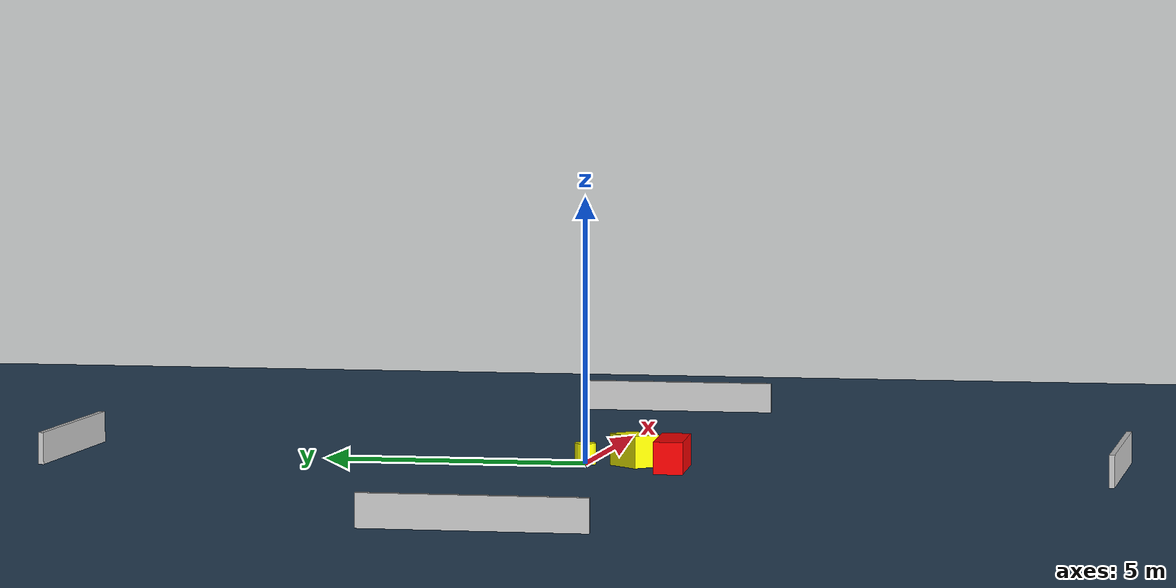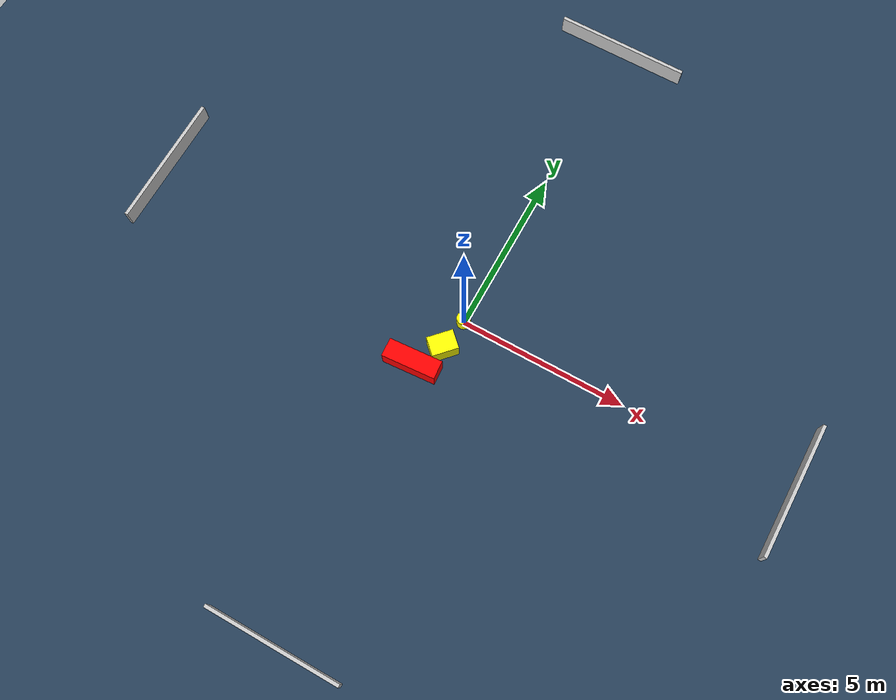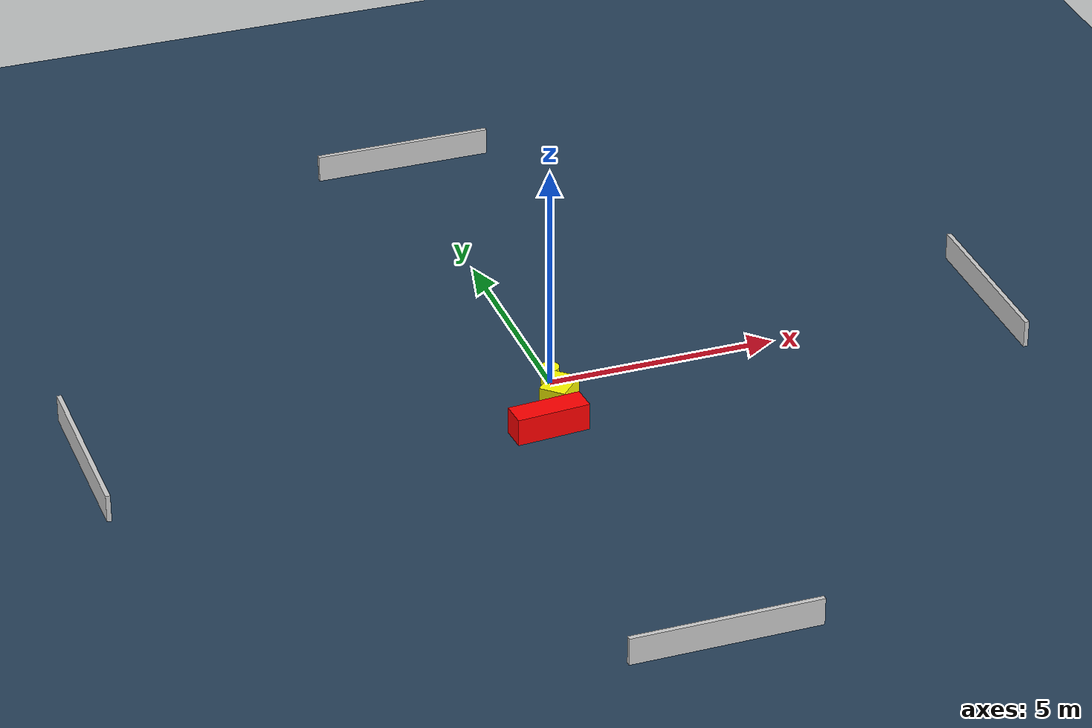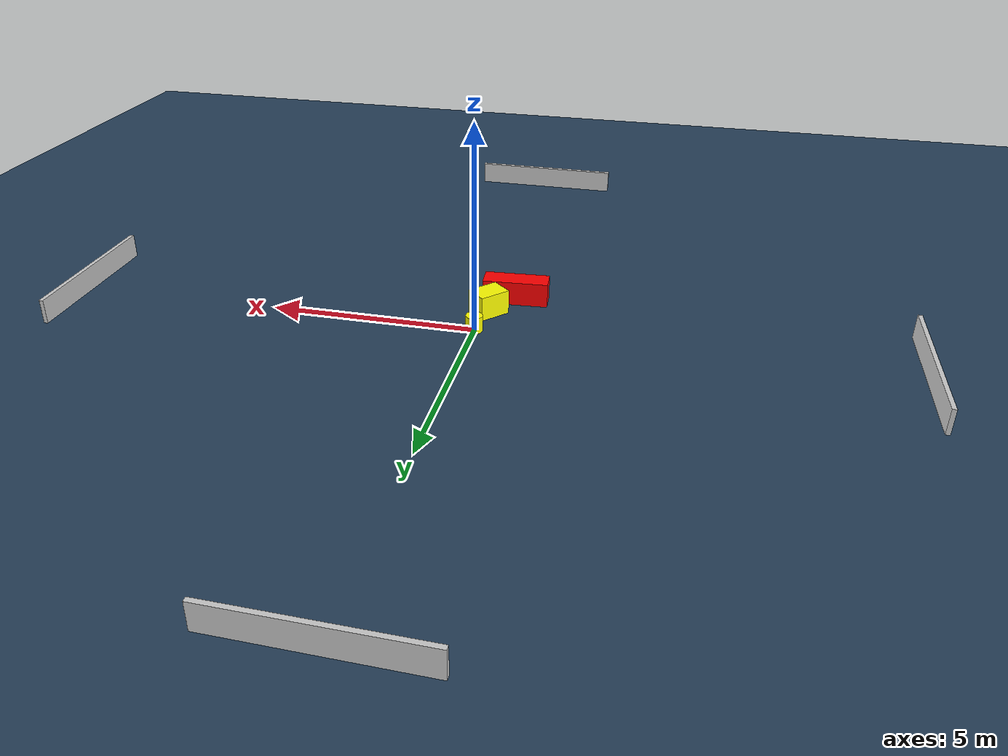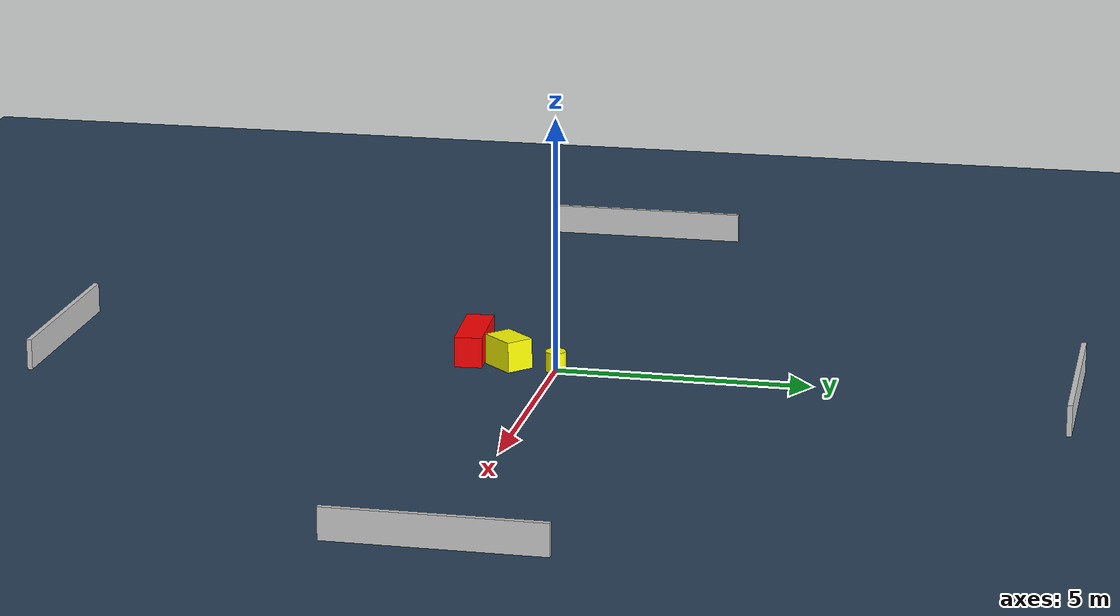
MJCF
<?xml version="1.0" ?>
<mujoco model="generated_environment">
  <option timestep="0.01" integrator="RK4" cone="elliptic"/>
  <default>
    <geom density="1"/>
  </default>
  <asset>
    <texture builtin="gradient" height="3072" name="skybox" rgb1="0.3 0.5 0.7" rgb2="0 0 0" type="skybox" width="512"/>
    <texture builtin="checker" height="300" name="groundplane" rgb1="0.2 0.3 0.4" rgb2="0.1 0.2 0.3" type="2d" width="300"/>
    <material name="groundplane" reflectance="0.2" texrepeat="5 5" texture="groundplane"/>
  </asset>
  <worldbody>
    <light dir="0 0 -1" directional="true" pos="0 0 1.5"/>
    <geom condim="3" friction="0.5 0.005 0.001" material="groundplane" name="floor" pos="0 0 0" size="0 0 0.05" type="plane"/>
    <body name="walls">
      <geom name="wall_1" condim="4" pos="-10.0 0.0 0.3" rgba="0.800000011920929 0.800000011920929 0.800000011920929 1.0" size="0.05 2.0 0.3" type="box"/>
      <geom name="wall_2" condim="4" pos="10.0 0.0 0.3" rgba="0.800000011920929 0.800000011920929 0.800000011920929 1.0" size="0.05 2.0 0.3" type="box"/>
      <geom name="wall_3" condim="4" pos="0.0 -10.0 0.3" rgba="0.800000011920929 0.800000011920929 0.800000011920929 1.0" size="2.0 0.05 0.3" type="box"/>
      <geom name="wall_4" condim="4" pos="0.0 10.0 0.3" rgba="0.800000011920929 0.800000011920929 0.800000011920929 1.0" size="2.0 0.05 0.3" type="box"/>
    </body>
    <body name="robot">
      <joint name="joint_x" type="slide" pos="0 0 0" axis="1 0 0"/>
      <joint name="joint_y" type="slide" pos="0 0 0" axis="0 1 0"/>
      <geom name="robot" type="cylinder" pos="0.0 0.0 0.2" size="0.2 0.2 0.0" mass="5.0" friction="1.0 0.005 0.0001" condim="4" rgba="1.0 1.0 0.0 1.0"/>
    </body>
    <body name="obstacle_1_movable">
      <geom name="obstacle_1_movable" condim="4" pos="-0.13485791313076645 -0.9623502488155996 0.3" euler="0 0 227.0017588136207" friction="0.0 0.005 0.001" rgba="1.0 1.0 0.0 1.0" size="0.38779380198782987 0.2846281191417639 0.3" type="box" mass="0.1"/>
      <joint type="free"/>
    </body>
    <body name="obstacle_2_static">
      <geom name="obstacle_2_static" condim="4" pos="-0.649814505417454 -1.7644683253690217 0.3" euler="0 0 184.08124096642314" friction="0.0 0.005 0.001" rgba="1.0 0.0 0.0 1.0" size="0.7969912632031 0.27243428488713356 0.3" type="box"/>
    </body>
  </worldbody>
  <actuator>
    <motor name="actuator_x" joint="joint_x" gear="1" ctrlrange="-1 1"/>
    <motor name="actuator_y" joint="joint_y" gear="1" ctrlrange="-1 1"/>
  </actuator>
</mujoco>
